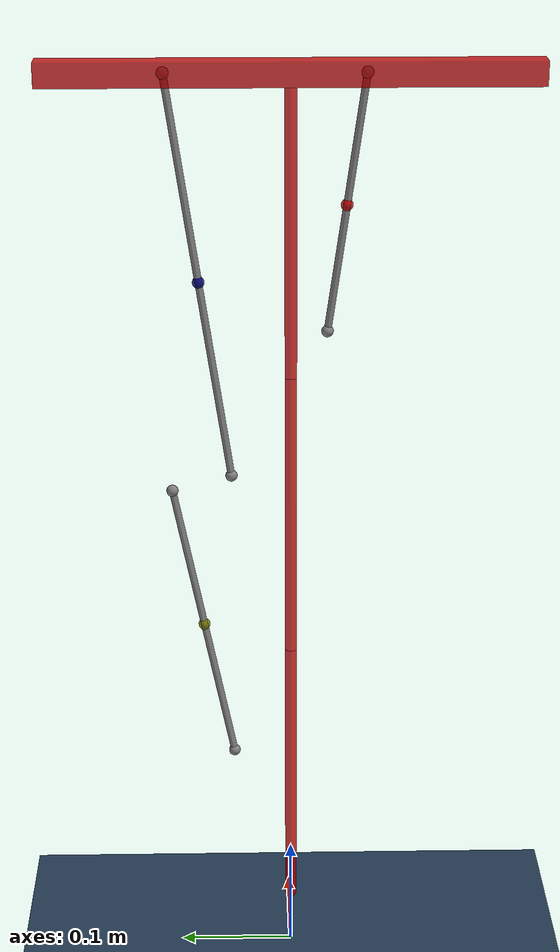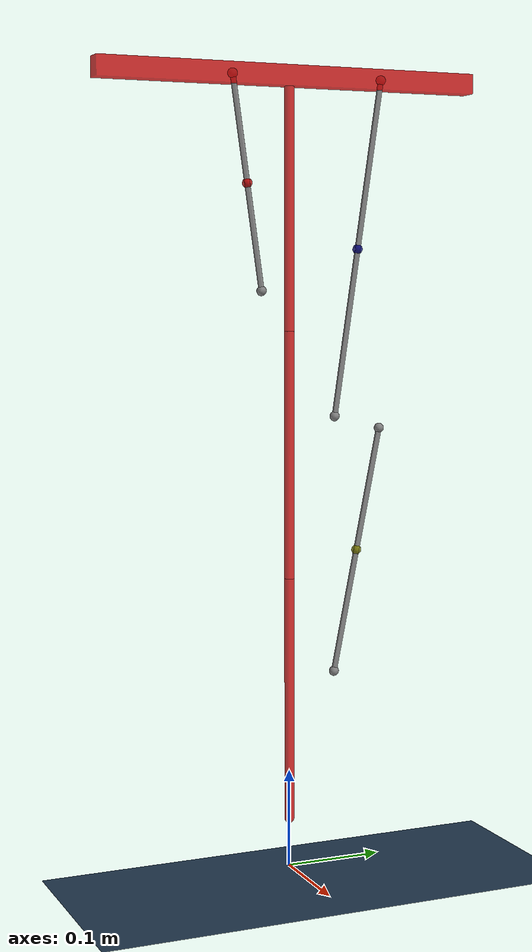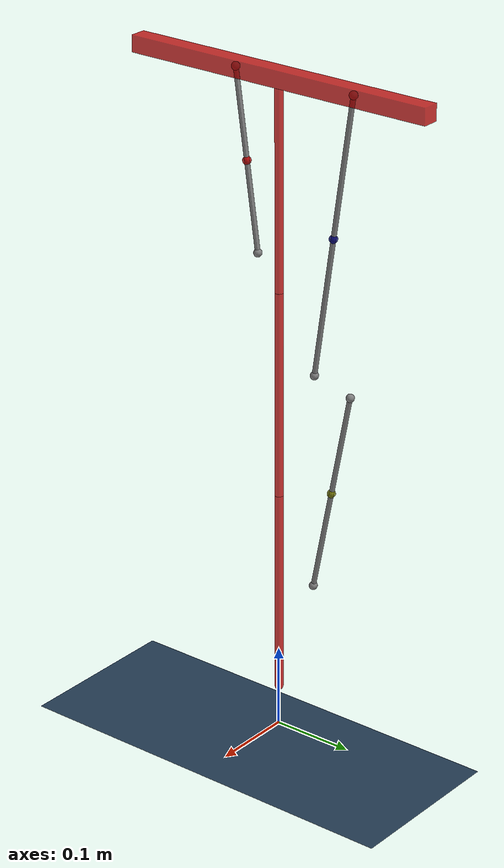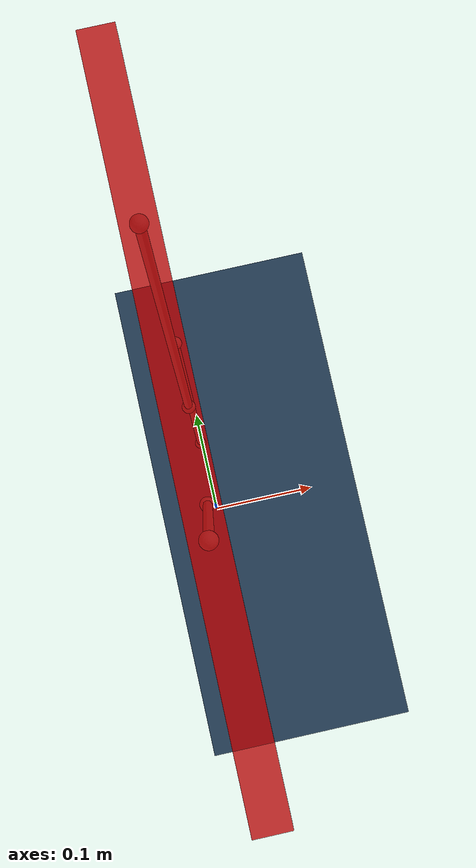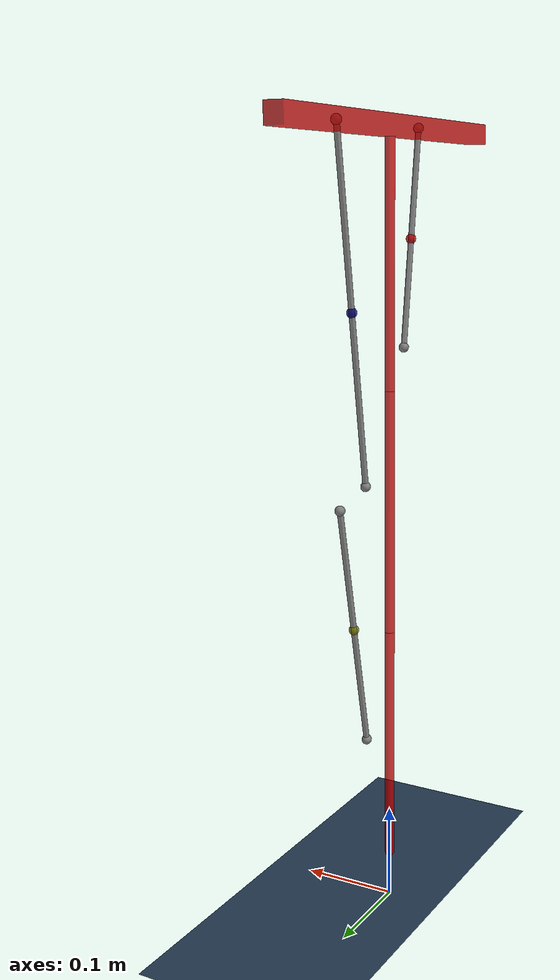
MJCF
<!-- Ideal single-leg rod-ball model -->

<mujoco model="v2_4">
    <compiler angle="radian"/>
    <option timestep="0.001" iterations="2000" gravity="0 0 -9.8" tolerance="1e-10"/>

    <default>
        <geom density="418"/>
    </default>

    <asset>
        <texture name="grid" type="2d" builtin="checker" rgb1=".1 .2 .3"
            rgb2=".2 .3 .4" width="300" height="300"/>
        <material name="grid" texture="grid" texrepeat="8 8" reflectance=".2"/>
    </asset>

    <worldbody>
        <light name="top" pos="0 0 5" diffuse="1 1 1" ambient="0.5 0.5 0.5"/>
        <camera name="closeup" pos="1.483 -0.033 0.580" xyaxes="0.040 0.999 -0.000 -0.129 0.005 0.992"/>

        <geom size="10 10 .01" type="plane" material="grid" friction="1 0.005 0.0001"/>

        <body name="Base" pos="0 0 0.8">
            <geom size="0.01 0.2 0.01" type="box" rgba="0.8 0 0 0.8" mass="0.155" contype="0" conaffinity="0"/>
            <body name="RB_Thigh" pos="0 0 0">
                <geom size="0.005" type="capsule" rgba="0.8 0 0 0.8" mass="0.086" fromto="0 0 0 0 0 -0.25" contype="0" conaffinity="0"/>
                <joint name="RB_Shoulder" type="hinge" axis="1 0 0" range="-1.57 1.57"/>
                <body name="RB_Calf" pos="0 0 -0.25">
                    <geom size="0.005" type="capsule" rgba="0.8 0 0 0.8" mass="0.1033" fromto="0 0 0 0 0 -0.25" contype="0" conaffinity="0"/>
                    <joint name="RB_Elbow" type="hinge" axis="1 0 0" range="-1.57 1.57"/>
                    <body name="Leg" pos="0 0 -0.25">
                        <geom size="0.005" type="capsule" rgba="0.8 0 0 0.8" mass="0.1033" fromto="0 0 0 0 0 -0.25" contype="0" conaffinity="0"/>
                        <joint name="Leg_joint" type="hinge" axis="1 0 0" range="-1.57 1.57"/>
                    </body>
                    <body name="Leg_RB_BAA_UPLink" pos="0 0.1 -0.1" axisangle="1 0 0 -0.1973955598">
                        <geom size="0.005" type="sphere" rgba="0.5 0.5 0 0.8" mass="0.03" contype="0" conaffinity="0"/>
                        <site name="Leg_RB_BAA_anchor1" pos="0 0 0"/>
                        <joint name="Leg_RB_BAA_UPJoint" type="hinge" axis="1 0 0"/>
                        <body name="Leg_RB_BAA_FMLink" pos="0 0 -0.1274754878">
                            <geom size="0.005" type="sphere" rgba="0.5 0.5 0 0.8" mass="0.12" contype="0" conaffinity="0"/>
                            <joint name="Leg_RB_BAA_SlideJoint" type="slide" axis="0 0 -1" damping="0" stiffness="0" springref="0"/>
                            <body name="Leg_RB_BAA_LOLink" pos="0 0 -0.1274754878">
                                <geom size="0.005" type="sphere" rgba="0.5 0.5 0 0.8" mass="0.03" contype="0" conaffinity="0"/>
                                <joint name="Leg_RB_BAA_FM_SlideJoint" type="slide" axis="0 0 -1" damping="0" stiffness="0" springref="0"/>
                                <site name="Leg_RB_BAA_anchor2" pos="0 0 0"/>
                            </body>
                        </body>
                    </body>
                </body>

            </body>
            <body name="RB_MAA_UPLink" pos="0 -0.06 0" axisangle="1 0 0 0.1419014548">
                <geom size="0.005" type="sphere" rgba="0.8 0 0 0.8" mass="0.03108" contype="0" conaffinity="0"/>
                <site name="RB_MAA_anchor1" pos="0 0 0"/>
                <joint name="RB_MAA_UpJoint" type="hinge" axis="1 0 0"/>
                <body name="RB_MAA_FM_Link" pos="0 0 -0.1060650937413537">
                    <geom size="0.005" type="sphere" rgba="0.8 0 0 0.8" mass="0.12432" contype="0" conaffinity="0"/>
                    <joint name="RB_MAA_SlideJoint" type="slide" axis="0 0 -1" damping="22.68" stiffness="637.52" springref="-0.019065093741353706"/>
                    <body name="RB_MAA_LOLink" pos="0 0 -0.1060650937413537">
                        <geom size="0.005" type="sphere" rgba="0.8 0 0 0.8" mass="0.03108" contype="0" conaffinity="0"/>
                        <joint name="RB_MAA_FM_SlideJoint" type="slide" axis="0 0 -1" damping="22.68" stiffness="637.52" springref="-0.019065093741353706"/>
                        <site name="RB_MAA_anchor2" pos="0 0 0"/>
                    </body>
                </body>
            </body>
            <body name="RB_BAA_UPLink" pos="0 0.1 0" axisangle="1 0 0 -0.147464847">
                <geom size="0.005" type="sphere" rgba="0 0 0.5 0.8" mass="0.04544333333" contype="0" conaffinity="0"/>
                <site name="RB_BAA_anchor1" pos="0 0 0"/>
                <joint name="RB_BAA_UpJoint" type="hinge" axis="1 0 0"/>
                <body name="RB_BAA_FM_LINK" pos="0 0 -0.17014792842496052">
                    <geom size="0.005" type="sphere" rgba="0 0 0.5 0.8" mass="0.1817733333" contype="0" conaffinity="0"/>
                    <joint name="RB_BAA_SlideJoint" type="slide" axis="0 0 -1" damping="21.8" stiffness="631.6" springref="-0.04204792842496052"/>
                    <body name="RB_BAA_LOLink" pos="0 0 -0.17014792842496052">
                        <geom size="0.005" type="sphere" rgba="0 0 0.5 0.8" mass="0.04544333333" contype="0" conaffinity="0"/>
                        <joint name="RB_BAA_FM_SlideJoint" type="slide" axis="0 0 -1" damping="21.8" stiffness="631.6" springref="-0.04204792842496052"/>
                        <site name="RB_BAA_anchor2" pos="0 0 0"/>
                    </body>
                </body>
            </body>
        </body>

    </worldbody>

          <!-- Add 8 position controllers to joints like RB_RB_BAA_LowerJoint, with position limits -->
    <actuator>
        <motor joint="RB_MAA_SlideJoint" ctrllimited="true" ctrlrange="-200 200" />
        <motor joint="RB_MAA_FM_SlideJoint" ctrllimited="true" ctrlrange="-200 200" />
        <motor joint="RB_BAA_SlideJoint" ctrllimited="true" ctrlrange="-200 200" />
        <motor joint="RB_BAA_FM_SlideJoint" ctrllimited="true" ctrlrange="-200 200" />
        <motor joint="Leg_RB_BAA_SlideJoint" ctrllimited="true" ctrlrange="-200 200" />
        <motor joint="Leg_RB_BAA_FM_SlideJoint" ctrllimited="true" ctrlrange="-200 200" />
    </actuator>

    <!-- Establish parallel relationships, e.g., RB_RB_BAA_LOLink should connect to RB_Calf -->
    <equality>
        <connect name="RB_BAA_connect" anchor="0 0 0" body2="RB_Calf" body1="RB_BAA_LOLink" solimp="0.95 0.99 0.00001 0.1 2"/>
        <connect name="RB_MAA_connect" anchor="0 0 0" body2="RB_Thigh" body1="RB_MAA_LOLink" solimp="0.95 0.99 0.00001 0.1 2"/>
        <connect name="Leg_RB_BAA_connect" anchor="0 0 0" body2="Leg" body1="Leg_RB_BAA_LOLink" solimp="0.95 0.99 0.00001 0.1 2"/>

        <!-- FM equality constraints -->
        <joint name="MAA" joint1="RB_MAA_SlideJoint" joint2="RB_MAA_FM_SlideJoint" solimp="0.95 0.99 0.00001 0.1 2"/>
        <joint name="BAA" joint1="RB_BAA_SlideJoint" joint2="RB_BAA_FM_SlideJoint" solimp="0.95 0.99 0.00001 0.1 2"/>
        <joint name="Leg_RB_BAA" joint1="Leg_RB_BAA_SlideJoint" joint2="Leg_RB_BAA_FM_SlideJoint" solimp="0.95 0.99 0.00001 0.1 2"/>
    </equality>

    <!-- visualization -->
    <tendon>
        <spatial stiffness="0" width="0.003">
            <site site="RB_MAA_anchor1"/>
            <site site="RB_MAA_anchor2"/>
        </spatial>
        <spatial stiffness="0" width="0.003">
            <site site="RB_BAA_anchor1"/>
            <site site="RB_BAA_anchor2"/>
        </spatial>
        <spatial stiffness="0" width="0.003">
            <site site="Leg_RB_BAA_anchor1"/>
            <site site="Leg_RB_BAA_anchor2"/>
        </spatial>
    </tendon>

</mujoco>
